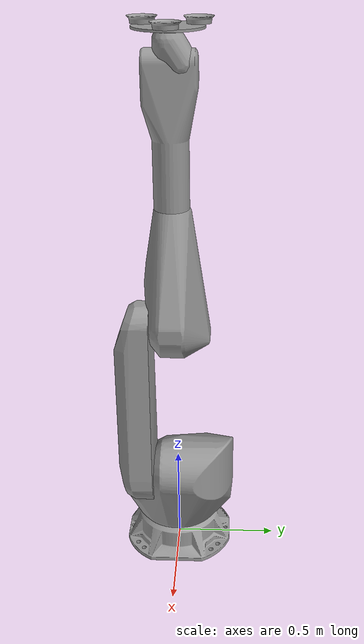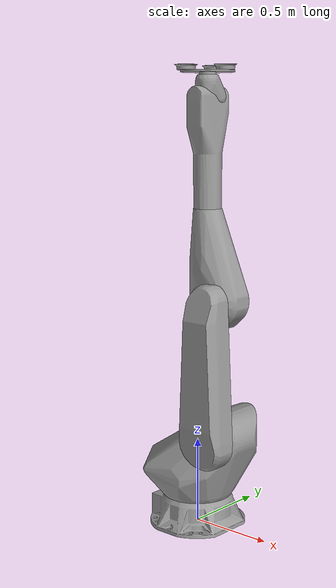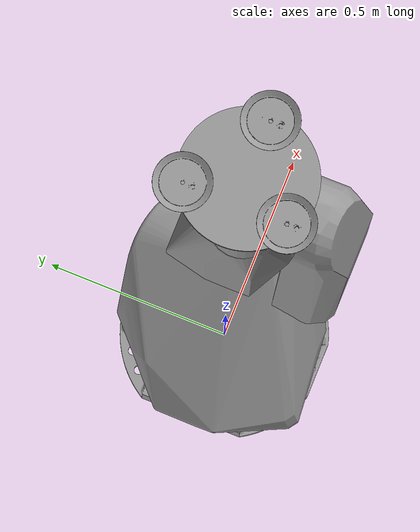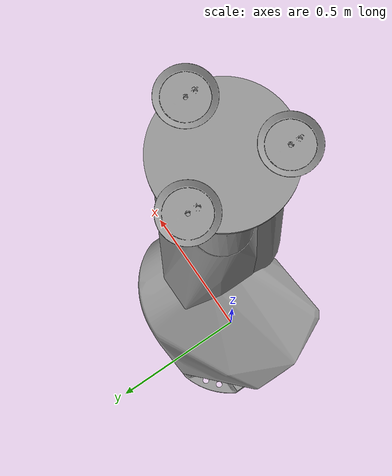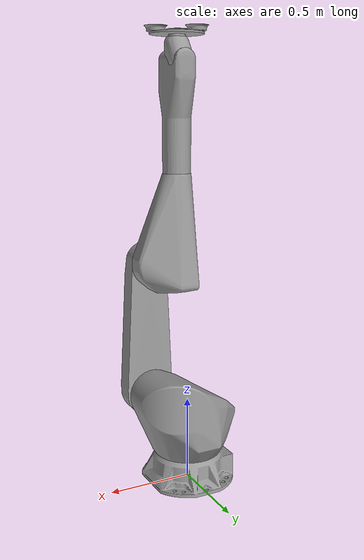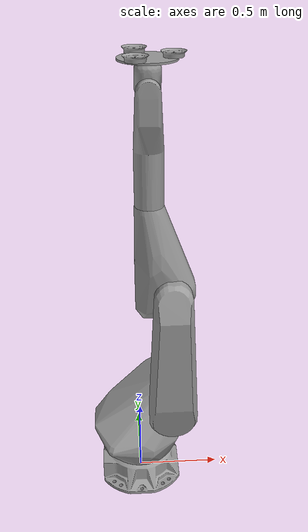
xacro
<?xml version="1.0" encoding="UTF-8"?>
<robot xmlns:xacro="http://wiki.ros.org/xacro" name="orba6">

  <!-- set prefix if multiple robots are used -->
  <xacro:arg name="prefix" default=""/>

  <xacro:arg name="hardware" default="mock"/> <!-- mock, motion_app, motor_direct -->

  <xacro:include filename="$(find pssbl_robot_descriptions)/urdf/orba6_2257/orba6_2257_macro.xacro"/>
  <xacro:include filename="$(find pssbl_robot_descriptions)/urdf/orba6_2257/vacuum_gripper_macro.xacro"/>
  <xacro:include filename="$(find pssbl_robot_descriptions)/urdf/orba6_2257/orba6_macro.ros2_control.xacro"/>
  <xacro:include filename="$(find pssbl_robot_descriptions)/urdf/gripper_macro.ros2_control.xacro"/>

  <!-- create link fixed to the "world" -->
  <link name="world"/>

  <xacro:orba6_2257 prefix="$(arg prefix)" parent="world">
    <origin xyz="0 0 0" rpy="0 0 0"/>
  </xacro:orba6_2257>

  <xacro:orba6_ros2_control
    name="orba6"
    prefix="$(arg prefix)"
    hardware="$(arg hardware)"
  />

  <xacro:orba6_vacuum_gripper prefix="" parent="$(arg prefix)flange">
    <origin xyz="0 0 0" rpy="0 0 0"/>
  </xacro:orba6_vacuum_gripper>

  <xacro:gripper_ros2_control
    name="orba6_gripper"
    prefix=""
    mock="$(eval hardware == 'mock')"
  />

</robot>

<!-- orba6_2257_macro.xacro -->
<robot xmlns:xacro="http://wiki.ros.org/xacro">

  <xacro:include filename="$(find pssbl_robot_descriptions)/urdf/common/inertials.xacro"/>
  <xacro:include filename="$(find pssbl_robot_descriptions)/urdf/common/materials.xacro"/>

  <xacro:macro name="orba6_2257" params="prefix parent *origin">
    <!-- LINKS -->
    <!-- base link -->
    <link name="${prefix}base_link">
      <!-- Default inertial for Gazebo - copy and edit block from 'common.xacro'
           to get more realistic behavior -->
      <xacro:default_inertial/>
      <visual>
        <origin xyz="0 0 0" rpy="0 0 0"/>
        <geometry>
          <mesh filename="package://pssbl_robot_descriptions/meshes/orba6_2257/visual/base_link.dae" />
        </geometry>
        <material name="grey"/>
      </visual>
      <collision>
        <origin xyz="0 0 0" rpy="0 0 0"/>
        <geometry>
          <mesh filename="package://pssbl_robot_descriptions/meshes/orba6_2257/collision/base_link.stl" />
        </geometry>
      </collision>
    </link>

    <!-- link 1 -->
    <link name="${prefix}link1">
      <!-- Default inertial for Gazebo - copy and edit block from 'common.xacro'
           to get more realistic behavior -->
      <xacro:default_inertial/>
      <visual>
        <origin xyz="0 0 0" rpy="0 0 0"/>
        <geometry>
          <mesh filename="package://pssbl_robot_descriptions/meshes/orba6_2257/visual/link1.dae" />
        </geometry>
        <material name="grey"/>
      </visual>
      <collision>
        <origin xyz="0 0 0" rpy="0 0 0"/>
        <geometry>
          <mesh filename="package://pssbl_robot_descriptions/meshes/orba6_2257/collision/link1.stl" />
        </geometry>
        <material name="grey"/>
      </collision>
    </link>

    <!-- link 2 -->
    <link name="${prefix}link2">
      <!-- Default inertial for Gazebo - copy and edit block from 'common.xacro'
           to get more realistic behavior-->
      <xacro:default_inertial/>
      <visual>
        <origin xyz="0 -0.10509 0" rpy="0 0 0"/>
        <geometry>
          <mesh filename="package://pssbl_robot_descriptions/meshes/orba6_2257/visual/link2.dae" />
        </geometry>
        <material name="grey"/>
      </visual>
      <collision>
        <origin xyz="0 -0.10509 0" rpy="0 0 0"/>
        <geometry>
          <mesh filename="package://pssbl_robot_descriptions/meshes/orba6_2257/collision/link2.stl" />
        </geometry>
      </collision>
    </link>

    <!-- link 3 -->
    <link name="${prefix}link3">
      <!-- Default inertial for Gazebo - copy and edit block from 'common.xacro'
           to get more realistic behavior-->
      <xacro:default_inertial/>
      <visual>
        <origin xyz="0 -0.10509 0" rpy="0 0 0"/>
        <geometry>
          <mesh filename="package://pssbl_robot_descriptions/meshes/orba6_2257/visual/link3.dae" />
        </geometry>
        <material name="grey"/>
      </visual>
      <collision>
        <origin xyz="0 -0.10509 0" rpy="0 0 0"/>
        <geometry>
          <mesh filename="package://pssbl_robot_descriptions/meshes/orba6_2257/collision/link3.stl" />
        </geometry>
      </collision>
    </link>

    <!-- link 4 -->
    <link name="${prefix}link4">
      <!-- Default inertial for Gazebo - copy and edit block from 'common.xacro'
           to get more realistic behavior-->
      <xacro:default_inertial/>
      <visual>
        <origin xyz="-0.60835 0 0" rpy="0 0 0"/>
        <geometry>
          <mesh filename="package://pssbl_robot_descriptions/meshes/orba6_2257/visual/link4-5.dae" />
        </geometry>
        <material name="grey"/>
      </visual>
      <collision>
        <origin xyz="-0.60835 0 0" rpy="0 0 0"/>
        <geometry>
          <mesh filename="package://pssbl_robot_descriptions/meshes/orba6_2257/collision/link4-5.stl" />
        </geometry>
      </collision>
    </link>

    <!-- link 5 -->
    <link name="${prefix}link5">
      <!-- Default inertial for Gazebo - copy and edit block from 'common.xacro'
           to get more realistic behavior-->
      <xacro:default_inertial/>
      <visual>
        <origin xyz="0 0 0" rpy="0 0 0"/>
        <geometry>
          <mesh filename="package://pssbl_robot_descriptions/meshes/orba6_2257/visual/link6.dae" />
        </geometry>
        <material name="grey"/>
      </visual>
      <collision>
        <origin xyz="0 0 0" rpy="0 0 0"/>
        <geometry>
          <mesh filename="package://pssbl_robot_descriptions/meshes/orba6_2257/collision/link6.stl" />
        </geometry>
      </collision>
    </link>
    <!-- link 6 -->
    <link name="${prefix}link6">
      <!-- Default inertial for Gazebo - copy and edit block from 'common.xacro'
           to get more realistic behavior-->
      <xacro:default_inertial/>
      <visual>
        <origin xyz="0 0 0" rpy="0 0 0"/>
        <geometry>
          <mesh filename="package://pssbl_robot_descriptions/meshes/orba6_2257/visual/flange.dae" />
        </geometry>
        <material name="grey"/>
      </visual>
      <collision>
        <origin xyz="0 0 0" rpy="0 0 0"/>
        <geometry>
          <mesh filename="package://pssbl_robot_descriptions/meshes/orba6_2257/collision/flange.stl" />
        </geometry>
      </collision>
    </link>

    <!-- All-zero tool frame. This frame should correspond to the TOOL frame of the robot's controller.) -->
    <!-- This frame should correspond to the BASE coordinate system of robot's controller.) -->
    <link name="${prefix}base"/>
    <!-- All-zero tool frame. This frame should correspond to the TOOL frame of the robot's controller.) -->
    <link name="${prefix}tool0"/>
    <!-- Frame for mounting EEF models to a manipulator. z+ axis points along the tool direction (towards end-effector)
          x+ axis points forward (REP 103). -->
    <link name="${prefix}flange"/>

    <!-- JOINTS -->
    <!-- base_joint fixes base_link to the environment -->
    <joint name="${prefix}base_joint" type="fixed">
      <xacro:insert_block name="origin"/>
      <parent link="${parent}"/>
      <child link="${prefix}base_link"/>
    </joint>

    <!-- joint 1 -->
    <joint name="${prefix}joint1" type="revolute">
      <origin xyz="0 0 0.1734" rpy="0 0 0"/>
      <parent link="${prefix}base_link"/>
      <child link="${prefix}link1"/>
      <axis xyz="0 0 -1"/>
      <limit lower="${radians(-185)}" upper="${radians(185)}" velocity="${radians(160)}" effort="${radians(400)}"/>
    </joint>

    <!-- joint 2 -->
    <joint name="${prefix}joint2" type="revolute">
      <origin xyz="0.2 0 0.3766" rpy="0 0 0"/>
      <parent link="${prefix}link1"/>
      <child link="${prefix}link2"/>
      <axis xyz="0 1 0"/>
      <limit lower="${radians(-90)}" upper="${radians(120)}" velocity="${radians(162)}" effort="${radians(366)}"/>
    </joint>

    <!-- joint 3 -->
    <!-- rotated to -90 degrees around Y with respect to the data sheet -->
    <joint name="${prefix}joint3" type="revolute">
      <origin xyz="0 0 0.8" rpy="0 ${-pi/2} 0"/>
      <parent link="${prefix}link2"/>
      <child link="${prefix}link3"/>
      <axis xyz="0 1 0"/>
      <limit lower="${radians(-184 + 90)}" upper="${radians(67 + 90)}" velocity="${radians(240)}" effort="${radians(580)}"/>
    </joint>
    <!-- joint 4 -->
    <joint name="${prefix}joint4" type="revolute">
      <origin xyz="1.115 0.0 0.125" rpy="0 0 0"/>
      <parent link="${prefix}link3"/>
      <child link="${prefix}link4"/>
      <axis xyz="1 0 0"/>
      <limit lower="${radians(-360)}" upper="${radians(360)}" velocity="${radians(270)}" effort="${radians(720)}"/>
    </joint>
    <!-- joint 5-->
    <joint name="${prefix}joint5" type="revolute">
      <parent link="${prefix}link4"/>
      <child link="${prefix}link5"/>
      <axis xyz="0 1 0"/>
      <origin xyz="0.000 0 0" rpy="0 0 0"/>
      <limit lower="${radians(-120)}" upper="${radians(120)}" velocity="${radians(270)}" effort="${radians(1200)}"/>
    </joint>
    <!-- joint 6-->
    <joint name="${prefix}joint6" type="revolute">
      <parent link="${prefix}link5"/>
      <child link="${prefix}link6"/>
      <axis xyz="1 0 0"/>
      <origin xyz="0 0 0" rpy="0 0 0"/>
      <limit lower="${radians(-360)}" upper="${radians(360)}" velocity="${radians(360)}" effort="${radians(1600)}"/>
    </joint>

    <!-- END JOINTS -->

    <joint name="${prefix}base_link-base_joint" type="fixed">
      <origin xyz="0 0 0" rpy="0 0 0"/>
      <parent link="${prefix}base_link"/>
      <child link="${prefix}base"/>
    </joint>

    <joint name="${prefix}link6-tool0" type="fixed">
      <origin xyz="0.135 0 0" rpy="0 ${pi/2} 0"/>
      <parent link="${prefix}link6"/>
      <child link="${prefix}tool0"/>
    </joint>

    <joint name="${prefix}tool0-flange" type="fixed">
      <origin xyz="0 0 0" rpy="0 0 0"/>
      <parent link="${prefix}tool0"/>
      <child link="${prefix}flange"/>
    </joint>

  </xacro:macro>
</robot>

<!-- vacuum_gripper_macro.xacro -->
<robot xmlns:xacro="http://wiki.ros.org/xacro">

  <xacro:include filename="$(find pssbl_robot_descriptions)/urdf/common/inertials.xacro"/>

  <xacro:macro name="orba6_vacuum_gripper" params="prefix parent *origin">
    <!-- LINKS -->
    <!-- base link -->
    <link name="${prefix}mount_link">
      <!-- Default inertial for Gazebo - copy and edit block from 'common.xacro'
           to get more realistic behavior -->
      <xacro:default_inertial/>
      <visual>
        <origin xyz="0 0 0" rpy="0 0 0"/>
        <geometry>
          <mesh filename="package://pssbl_robot_descriptions/meshes/vacuum_gripper/visual/base_link.dae" />
        </geometry>
        <material name="grey"/>
      </visual>
      <collision>
        <origin xyz="0 0 0" rpy="0 0 0"/>
        <geometry>
          <mesh filename="package://pssbl_robot_descriptions/meshes/vacuum_gripper/collision/base_link.stl"/>
        </geometry>
      </collision>
    </link>

    <!-- link 1 - All zero tool frame -->
    <link name="${prefix}gripper_base"/>

    <!-- link 2 -->
    <link name="${prefix}gripper_tcp">
      <!-- Default inertial for Gazebo - copy and edit block from 'common.xacro'
           to get more realistic behavior -->
      <xacro:default_inertial/>
      <visual>
        <origin xyz="0 0 0" rpy="0 0 0"/>
        <geometry>
          <mesh filename="package://pssbl_robot_descriptions/meshes/vacuum_gripper/visual/link2.dae" />
        </geometry>
        <material name="grey"/>
      </visual>
      <collision>
        <origin xyz="0 0 0" rpy="0 0 0"/>
        <geometry>
          <mesh filename="package://pssbl_robot_descriptions/meshes/vacuum_gripper/collision/link2.stl"/>
        </geometry>
      </collision>
    </link>

    <!-- JOINTS -->
    <!-- mount_joint fixes mount_link to the environment -->
    <joint name="${prefix}mount_joint" type="fixed">
      <xacro:insert_block name="origin"/>
      <parent link="${parent}"/>
      <child link="${prefix}mount_link"/>
    </joint>

    <!-- joint 1 -->
    <joint name="${prefix}gripper_base_joint" type="fixed">
      <origin xyz="0 0 0.01" rpy="0 0 0"/>
      <parent link="${prefix}mount_link"/>
      <child link="${prefix}gripper_base"/>
    </joint>

    <!-- joint 2 -->
    <joint name="${prefix}gripper_tcp_joint" type="fixed">
      <origin xyz="0 0 0.029" rpy="0 0 0"/>
      <parent link="${prefix}gripper_base"/>
      <child link="${prefix}gripper_tcp"/>
    </joint>

  </xacro:macro>

</robot>
